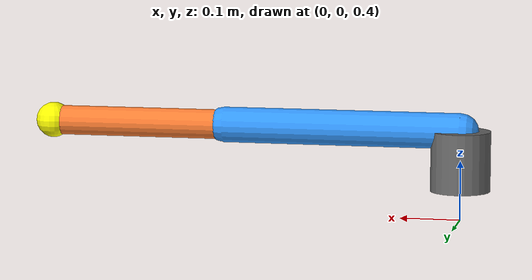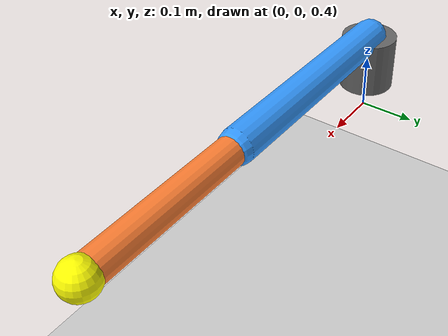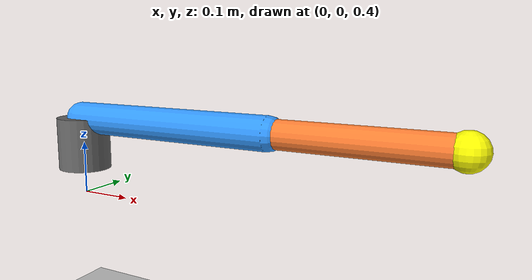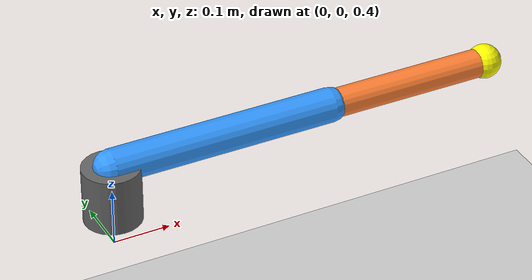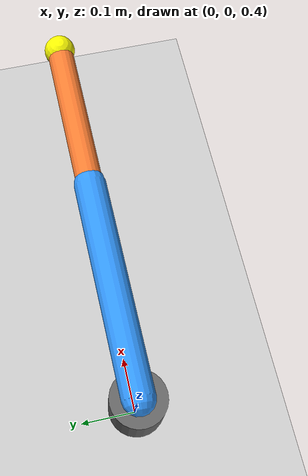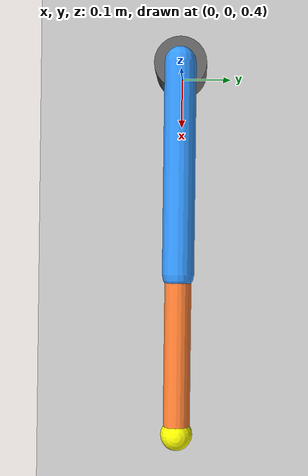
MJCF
<mujoco model="robot_arm">
  <option gravity="0 0 -9.81" timestep = "0.01"/>

  <worldbody>
    <light pos="0 0 3"/>
    <geom name="floor" type="plane" size="2 2 0.1" rgba=".8 .8 .8 1"/>

    <!-- Fixed base -->
    <body name="base" pos="0 0 0.5">
      <geom type="cylinder" size="0.05 0.05" rgba="0.4 0.4 0.4 1"/>

      <!-- First link -->
      <body name="link1" pos="0 0 0.05">
        <joint name="joint1" type="hinge" axis="0 0 1" damping="1"/>
        <geom type="capsule" fromto="0 0 0  0.4 0 0" size="0.03" rgba="0.2 0.6 1 1"/>

        <!-- Second link -->
        <body name="link2" pos="0.4 0 0">
          <joint name="joint2" type="hinge" axis="0 1 0" damping="1"/>
          <geom type="capsule" fromto="0 0 0  0.3 0 0" size="0.025" rgba="1 0.5 0.2 1"/>

          <!-- End effector tip -->
          <body name="tip" pos="0.3 0 0">
            <geom type="sphere" size="0.03" rgba="1 1 0 1"/>
          </body>
        </body>
      </body>
    </body>

  </worldbody>

  <!-- Actuators control the joints -->
  <actuator>
    <position name="act1" joint="joint1" kp="10"/>
    <position name="act2" joint="joint2" kp="10"/>
  </actuator>

</mujoco>
